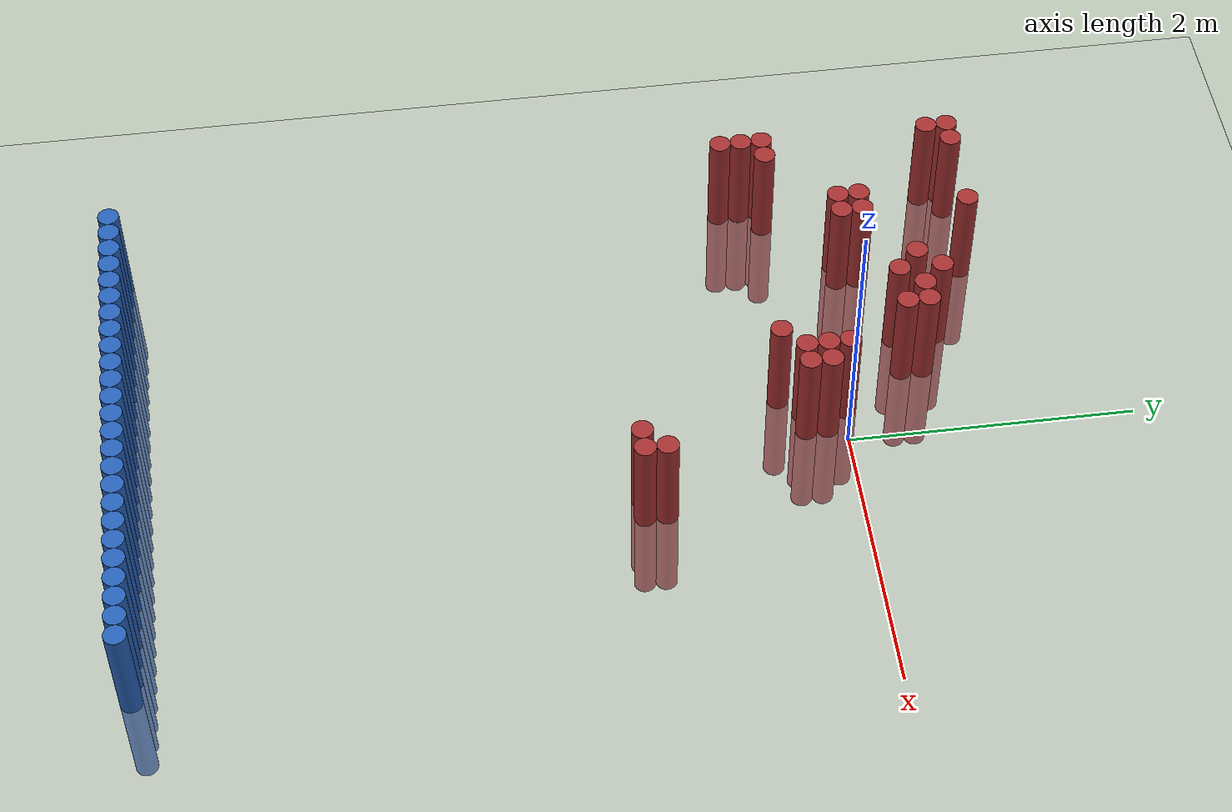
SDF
<sdf version="1.6">
 <world name="default">
  <model name="ground_plane">
   <static>1</static>
   <link name="link">
    <collision name="collision">
     <geometry><plane><normal>0 0 1</normal><size>100 100</size></plane></geometry>
     <surface><friction><ode><mu>100</mu><mu2>50</mu2></ode></friction></surface>
    </collision>
    <visual name="visual">
     <cast_shadows>0</cast_shadows>
     <geometry><plane><normal>0 0 1</normal><size>100 100</size></plane></geometry>
     <material>
      <script><uri>file://media/materials/scripts/gazebo.material</uri><name>Gazebo/Grey</name></script>
     </material>
    </visual>
   </link>
  </model>
  <model name="unit_cylinder_16">
   <static>1</static>
   <pose>1.525000 -4.925000 0.000000 0.000000 0.000000 0.000000</pose>
   <link name="link">
    <inertial>
     <mass>1</mass>
     <inertia><ixx>0.145833</ixx><ixy>0</ixy><ixz>0</ixz><iyy>0.145833</iyy><iyz>0</iyz><izz>0.125</izz></inertia>
    </inertial>
    <collision name="collision">
     <geometry><cylinder><radius>0.075000</radius><length>1.5</length></cylinder></geometry>
    </collision>
    <visual name="visual">
     <geometry><cylinder><radius>0.075000</radius><length>1.5</length></cylinder></geometry>
     <material>
      <ambient>0.152000 0.379000 0.720000 1</ambient>
      <diffuse>0.152000 0.379000 0.720000 1</diffuse>
     </material>
     <material>
      <script><name>Gazebo/Grey</name><uri>file://media/materials/scripts/gazebo.material</uri></script>
     </material>
    </visual>
   </link>
  </model>
  <model name="unit_cylinder_17">
   <static>1</static>
   <pose>1.375000 -4.925000 0.000000 0.000000 0.000000 0.000000</pose>
   <link name="link">
    <inertial>
     <mass>1</mass>
     <inertia><ixx>0.145833</ixx><ixy>0</ixy><ixz>0</ixz><iyy>0.145833</iyy><iyz>0</iyz><izz>0.125</izz></inertia>
    </inertial>
    <collision name="collision">
     <geometry><cylinder><radius>0.075000</radius><length>1.5</length></cylinder></geometry>
    </collision>
    <visual name="visual">
     <geometry><cylinder><radius>0.075000</radius><length>1.5</length></cylinder></geometry>
     <material>
      <ambient>0.152000 0.379000 0.720000 1</ambient>
      <diffuse>0.152000 0.379000 0.720000 1</diffuse>
     </material>
     <material>
      <script><name>Gazebo/Grey</name><uri>file://media/materials/scripts/gazebo.material</uri></script>
     </material>
    </visual>
   </link>
  </model>
  <model name="unit_cylinder_18">
   <static>1</static>
   <pose>1.225000 -4.925000 0.000000 0.000000 0.000000 0.000000</pose>
   <link name="link">
    <inertial>
     <mass>1</mass>
     <inertia><ixx>0.145833</ixx><ixy>0</ixy><ixz>0</ixz><iyy>0.145833</iyy><iyz>0</iyz><izz>0.125</izz></inertia>
    </inertial>
    <collision name="collision">
     <geometry><cylinder><radius>0.075000</radius><length>1.5</length></cylinder></geometry>
    </collision>
    <visual name="visual">
     <geometry><cylinder><radius>0.075000</radius><length>1.5</length></cylinder></geometry>
     <material>
      <ambient>0.152000 0.379000 0.720000 1</ambient>
      <diffuse>0.152000 0.379000 0.720000 1</diffuse>
     </material>
     <material>
      <script><name>Gazebo/Grey</name><uri>file://media/materials/scripts/gazebo.material</uri></script>
     </material>
    </visual>
   </link>
  </model>
  <model name="unit_cylinder_19">
   <static>1</static>
   <pose>1.075000 -4.925000 0.000000 0.000000 0.000000 0.000000</pose>
   <link name="link">
    <inertial>
     <mass>1</mass>
     <inertia><ixx>0.145833</ixx><ixy>0</ixy><ixz>0</ixz><iyy>0.145833</iyy><iyz>0</iyz><izz>0.125</izz></inertia>
    </inertial>
    <collision name="collision">
     <geometry><cylinder><radius>0.075000</radius><length>1.5</length></cylinder></geometry>
    </collision>
    <visual name="visual">
     <geometry><cylinder><radius>0.075000</radius><length>1.5</length></cylinder></geometry>
     <material>
      <ambient>0.152000 0.379000 0.720000 1</ambient>
      <diffuse>0.152000 0.379000 0.720000 1</diffuse>
     </material>
     <material>
      <script><name>Gazebo/Grey</name><uri>file://media/materials/scripts/gazebo.material</uri></script>
     </material>
    </visual>
   </link>
  </model>
  <model name="unit_cylinder_20">
   <static>1</static>
   <pose>0.925000 -4.925000 0.000000 0.000000 0.000000 0.000000</pose>
   <link name="link">
    <inertial>
     <mass>1</mass>
     <inertia><ixx>0.145833</ixx><ixy>0</ixy><ixz>0</ixz><iyy>0.145833</iyy><iyz>0</iyz><izz>0.125</izz></inertia>
    </inertial>
    <collision name="collision">
     <geometry><cylinder><radius>0.075000</radius><length>1.5</length></cylinder></geometry>
    </collision>
    <visual name="visual">
     <geometry><cylinder><radius>0.075000</radius><length>1.5</length></cylinder></geometry>
     <material>
      <ambient>0.152000 0.379000 0.720000 1</ambient>
      <diffuse>0.152000 0.379000 0.720000 1</diffuse>
     </material>
     <material>
      <script><name>Gazebo/Grey</name><uri>file://media/materials/scripts/gazebo.material</uri></script>
     </material>
    </visual>
   </link>
  </model>
  <model name="unit_cylinder_21">
   <static>1</static>
   <pose>0.775000 -4.925000 0.000000 0.000000 0.000000 0.000000</pose>
   <link name="link">
    <inertial>
     <mass>1</mass>
     <inertia><ixx>0.145833</ixx><ixy>0</ixy><ixz>0</ixz><iyy>0.145833</iyy><iyz>0</iyz><izz>0.125</izz></inertia>
    </inertial>
    <collision name="collision">
     <geometry><cylinder><radius>0.075000</radius><length>1.5</length></cylinder></geometry>
    </collision>
    <visual name="visual">
     <geometry><cylinder><radius>0.075000</radius><length>1.5</length></cylinder></geometry>
     <material>
      <ambient>0.152000 0.379000 0.720000 1</ambient>
      <diffuse>0.152000 0.379000 0.720000 1</diffuse>
     </material>
     <material>
      <script><name>Gazebo/Grey</name><uri>file://media/materials/scripts/gazebo.material</uri></script>
     </material>
    </visual>
   </link>
  </model>
  <model name="unit_cylinder_22">
   <static>1</static>
   <pose>0.625000 -4.925000 0.000000 0.000000 0.000000 0.000000</pose>
   <link name="link">
    <inertial>
     <mass>1</mass>
     <inertia><ixx>0.145833</ixx><ixy>0</ixy><ixz>0</ixz><iyy>0.145833</iyy><iyz>0</iyz><izz>0.125</izz></inertia>
    </inertial>
    <collision name="collision">
     <geometry><cylinder><radius>0.075000</radius><length>1.5</length></cylinder></geometry>
    </collision>
    <visual name="visual">
     <geometry><cylinder><radius>0.075000</radius><length>1.5</length></cylinder></geometry>
     <material>
      <ambient>0.152000 0.379000 0.720000 1</ambient>
      <diffuse>0.152000 0.379000 0.720000 1</diffuse>
     </material>
     <material>
      <script><name>Gazebo/Grey</name><uri>file://media/materials/scripts/gazebo.material</uri></script>
     </material>
    </visual>
   </link>
  </model>
  <model name="unit_cylinder_23">
   <static>1</static>
   <pose>0.475000 -4.925000 0.000000 0.000000 0.000000 0.000000</pose>
   <link name="link">
    <inertial>
     <mass>1</mass>
     <inertia><ixx>0.145833</ixx><ixy>0</ixy><ixz>0</ixz><iyy>0.145833</iyy><iyz>0</iyz><izz>0.125</izz></inertia>
    </inertial>
    <collision name="collision">
     <geometry><cylinder><radius>0.075000</radius><length>1.5</length></cylinder></geometry>
    </collision>
    <visual name="visual">
     <geometry><cylinder><radius>0.075000</radius><length>1.5</length></cylinder></geometry>
     <material>
      <ambient>0.152000 0.379000 0.720000 1</ambient>
      <diffuse>0.152000 0.379000 0.720000 1</diffuse>
     </material>
     <material>
      <script><name>Gazebo/Grey</name><uri>file://media/materials/scripts/gazebo.material</uri></script>
     </material>
    </visual>
   </link>
  </model>
  <model name="unit_cylinder_24">
   <static>1</static>
   <pose>0.325000 -4.925000 0.000000 0.000000 0.000000 0.000000</pose>
   <link name="link">
    <inertial>
     <mass>1</mass>
     <inertia><ixx>0.145833</ixx><ixy>0</ixy><ixz>0</ixz><iyy>0.145833</iyy><iyz>0</iyz><izz>0.125</izz></inertia>
    </inertial>
    <collision name="collision">
     <geometry><cylinder><radius>0.075000</radius><length>1.5</length></cylinder></geometry>
    </collision>
    <visual name="visual">
     <geometry><cylinder><radius>0.075000</radius><length>1.5</length></cylinder></geometry>
     <material>
      <ambient>0.152000 0.379000 0.720000 1</ambient>
      <diffuse>0.152000 0.379000 0.720000 1</diffuse>
     </material>
     <material>
      <script><name>Gazebo/Grey</name><uri>file://media/materials/scripts/gazebo.material</uri></script>
     </material>
    </visual>
   </link>
  </model>
  <model name="unit_cylinder_25">
   <static>1</static>
   <pose>0.175000 -4.925000 0.000000 0.000000 0.000000 0.000000</pose>
   <link name="link">
    <inertial>
     <mass>1</mass>
     <inertia><ixx>0.145833</ixx><ixy>0</ixy><ixz>0</ixz><iyy>0.145833</iyy><iyz>0</iyz><izz>0.125</izz></inertia>
    </inertial>
    <collision name="collision">
     <geometry><cylinder><radius>0.075000</radius><length>1.5</length></cylinder></geometry>
    </collision>
    <visual name="visual">
     <geometry><cylinder><radius>0.075000</radius><length>1.5</length></cylinder></geometry>
     <material>
      <ambient>0.152000 0.379000 0.720000 1</ambient>
      <diffuse>0.152000 0.379000 0.720000 1</diffuse>
     </material>
     <material>
      <script><name>Gazebo/Grey</name><uri>file://media/materials/scripts/gazebo.material</uri></script>
     </material>
    </visual>
   </link>
  </model>
  <model name="unit_cylinder_26">
   <static>1</static>
   <pose>0.025000 -4.925000 0.000000 0.000000 0.000000 0.000000</pose>
   <link name="link">
    <inertial>
     <mass>1</mass>
     <inertia><ixx>0.145833</ixx><ixy>0</ixy><ixz>0</ixz><iyy>0.145833</iyy><iyz>0</iyz><izz>0.125</izz></inertia>
    </inertial>
    <collision name="collision">
     <geometry><cylinder><radius>0.075000</radius><length>1.5</length></cylinder></geometry>
    </collision>
    <visual name="visual">
     <geometry><cylinder><radius>0.075000</radius><length>1.5</length></cylinder></geometry>
     <material>
      <ambient>0.152000 0.379000 0.720000 1</ambient>
      <diffuse>0.152000 0.379000 0.720000 1</diffuse>
     </material>
     <material>
      <script><name>Gazebo/Grey</name><uri>file://media/materials/scripts/gazebo.material</uri></script>
     </material>
    </visual>
   </link>
  </model>
  <model name="unit_cylinder_27">
   <static>1</static>
   <pose>-0.125000 -4.925000 0.000000 0.000000 0.000000 0.000000</pose>
   <link name="link">
    <inertial>
     <mass>1</mass>
     <inertia><ixx>0.145833</ixx><ixy>0</ixy><ixz>0</ixz><iyy>0.145833</iyy><iyz>0</iyz><izz>0.125</izz></inertia>
    </inertial>
    <collision name="collision">
     <geometry><cylinder><radius>0.075000</radius><length>1.5</length></cylinder></geometry>
    </collision>
    <visual name="visual">
     <geometry><cylinder><radius>0.075000</radius><length>1.5</length></cylinder></geometry>
     <material>
      <ambient>0.152000 0.379000 0.720000 1</ambient>
      <diffuse>0.152000 0.379000 0.720000 1</diffuse>
     </material>
     <material>
      <script><name>Gazebo/Grey</name><uri>file://media/materials/scripts/gazebo.material</uri></script>
     </material>
    </visual>
   </link>
  </model>
  <model name="unit_cylinder_28">
   <static>1</static>
   <pose>-0.275000 -4.925000 0.000000 0.000000 0.000000 0.000000</pose>
   <link name="link">
    <inertial>
     <mass>1</mass>
     <inertia><ixx>0.145833</ixx><ixy>0</ixy><ixz>0</ixz><iyy>0.145833</iyy><iyz>0</iyz><izz>0.125</izz></inertia>
    </inertial>
    <collision name="collision">
     <geometry><cylinder><radius>0.075000</radius><length>1.5</length></cylinder></geometry>
    </collision>
    <visual name="visual">
     <geometry><cylinder><radius>0.075000</radius><length>1.5</length></cylinder></geometry>
     <material>
      <ambient>0.152000 0.379000 0.720000 1</ambient>
      <diffuse>0.152000 0.379000 0.720000 1</diffuse>
     </material>
     <material>
      <script><name>Gazebo/Grey</name><uri>file://media/materials/scripts/gazebo.material</uri></script>
     </material>
    </visual>
   </link>
  </model>
  <model name="unit_cylinder_29">
   <static>1</static>
   <pose>-0.425000 -4.925000 0.000000 0.000000 0.000000 0.000000</pose>
   <link name="link">
    <inertial>
     <mass>1</mass>
     <inertia><ixx>0.145833</ixx><ixy>0</ixy><ixz>0</ixz><iyy>0.145833</iyy><iyz>0</iyz><izz>0.125</izz></inertia>
    </inertial>
    <collision name="collision">
     <geometry><cylinder><radius>0.075000</radius><length>1.5</length></cylinder></geometry>
    </collision>
    <visual name="visual">
     <geometry><cylinder><radius>0.075000</radius><length>1.5</length></cylinder></geometry>
     <material>
      <ambient>0.152000 0.379000 0.720000 1</ambient>
      <diffuse>0.152000 0.379000 0.720000 1</diffuse>
     </material>
     <material>
      <script><name>Gazebo/Grey</name><uri>file://media/materials/scripts/gazebo.material</uri></script>
     </material>
    </visual>
   </link>
  </model>
  <model name="unit_cylinder_30">
   <static>1</static>
   <pose>-0.575000 -4.925000 0.000000 0.000000 0.000000 0.000000</pose>
   <link name="link">
    <inertial>
     <mass>1</mass>
     <inertia><ixx>0.145833</ixx><ixy>0</ixy><ixz>0</ixz><iyy>0.145833</iyy><iyz>0</iyz><izz>0.125</izz></inertia>
    </inertial>
    <collision name="collision">
     <geometry><cylinder><radius>0.075000</radius><length>1.5</length></cylinder></geometry>
    </collision>
    <visual name="visual">
     <geometry><cylinder><radius>0.075000</radius><length>1.5</length></cylinder></geometry>
     <material>
      <ambient>0.152000 0.379000 0.720000 1</ambient>
      <diffuse>0.152000 0.379000 0.720000 1</diffuse>
     </material>
     <material>
      <script><name>Gazebo/Grey</name><uri>file://media/materials/scripts/gazebo.material</uri></script>
     </material>
    </visual>
   </link>
  </model>
  <model name="unit_cylinder_31">
   <static>1</static>
   <pose>-0.725000 -4.925000 0.000000 0.000000 0.000000 0.000000</pose>
   <link name="link">
    <inertial>
     <mass>1</mass>
     <inertia><ixx>0.145833</ixx><ixy>0</ixy><ixz>0</ixz><iyy>0.145833</iyy><iyz>0</iyz><izz>0.125</izz></inertia>
    </inertial>
    <collision name="collision">
     <geometry><cylinder><radius>0.075000</radius><length>1.5</length></cylinder></geometry>
    </collision>
    <visual name="visual">
     <geometry><cylinder><radius>0.075000</radius><length>1.5</length></cylinder></geometry>
     <material>
      <ambient>0.152000 0.379000 0.720000 1</ambient>
      <diffuse>0.152000 0.379000 0.720000 1</diffuse>
     </material>
     <material>
      <script><name>Gazebo/Grey</name><uri>file://media/materials/scripts/gazebo.material</uri></script>
     </material>
    </visual>
   </link>
  </model>
  <model name="unit_cylinder_32">
   <static>1</static>
   <pose>-0.875000 -4.925000 0.000000 0.000000 0.000000 0.000000</pose>
   <link name="link">
    <inertial>
     <mass>1</mass>
     <inertia><ixx>0.145833</ixx><ixy>0</ixy><ixz>0</ixz><iyy>0.145833</iyy><iyz>0</iyz><izz>0.125</izz></inertia>
    </inertial>
    <collision name="collision">
     <geometry><cylinder><radius>0.075000</radius><length>1.5</length></cylinder></geometry>
    </collision>
    <visual name="visual">
     <geometry><cylinder><radius>0.075000</radius><length>1.5</length></cylinder></geometry>
     <material>
      <ambient>0.152000 0.379000 0.720000 1</ambient>
      <diffuse>0.152000 0.379000 0.720000 1</diffuse>
     </material>
     <material>
      <script><name>Gazebo/Grey</name><uri>file://media/materials/scripts/gazebo.material</uri></script>
     </material>
    </visual>
   </link>
  </model>
  <model name="unit_cylinder_33">
   <static>1</static>
   <pose>-1.025000 -4.925000 0.000000 0.000000 0.000000 0.000000</pose>
   <link name="link">
    <inertial>
     <mass>1</mass>
     <inertia><ixx>0.145833</ixx><ixy>0</ixy><ixz>0</ixz><iyy>0.145833</iyy><iyz>0</iyz><izz>0.125</izz></inertia>
    </inertial>
    <collision name="collision">
     <geometry><cylinder><radius>0.075000</radius><length>1.5</length></cylinder></geometry>
    </collision>
    <visual name="visual">
     <geometry><cylinder><radius>0.075000</radius><length>1.5</length></cylinder></geometry>
     <material>
      <ambient>0.152000 0.379000 0.720000 1</ambient>
      <diffuse>0.152000 0.379000 0.720000 1</diffuse>
     </material>
     <material>
      <script><name>Gazebo/Grey</name><uri>file://media/materials/scripts/gazebo.material</uri></script>
     </material>
    </visual>
   </link>
  </model>
  <model name="unit_cylinder_34">
   <static>1</static>
   <pose>-1.175000 -4.925000 0.000000 0.000000 0.000000 0.000000</pose>
   <link name="link">
    <inertial>
     <mass>1</mass>
     <inertia><ixx>0.145833</ixx><ixy>0</ixy><ixz>0</ixz><iyy>0.145833</iyy><iyz>0</iyz><izz>0.125</izz></inertia>
    </inertial>
    <collision name="collision">
     <geometry><cylinder><radius>0.075000</radius><length>1.5</length></cylinder></geometry>
    </collision>
    <visual name="visual">
     <geometry><cylinder><radius>0.075000</radius><length>1.5</length></cylinder></geometry>
     <material>
      <ambient>0.152000 0.379000 0.720000 1</ambient>
      <diffuse>0.152000 0.379000 0.720000 1</diffuse>
     </material>
     <material>
      <script><name>Gazebo/Grey</name><uri>file://media/materials/scripts/gazebo.material</uri></script>
     </material>
    </visual>
   </link>
  </model>
  <model name="unit_cylinder_35">
   <static>1</static>
   <pose>-1.325000 -4.925000 0.000000 0.000000 0.000000 0.000000</pose>
   <link name="link">
    <inertial>
     <mass>1</mass>
     <inertia><ixx>0.145833</ixx><ixy>0</ixy><ixz>0</ixz><iyy>0.145833</iyy><iyz>0</iyz><izz>0.125</izz></inertia>
    </inertial>
    <collision name="collision">
     <geometry><cylinder><radius>0.075000</radius><length>1.5</length></cylinder></geometry>
    </collision>
    <visual name="visual">
     <geometry><cylinder><radius>0.075000</radius><length>1.5</length></cylinder></geometry>
     <material>
      <ambient>0.152000 0.379000 0.720000 1</ambient>
      <diffuse>0.152000 0.379000 0.720000 1</diffuse>
     </material>
     <material>
      <script><name>Gazebo/Grey</name><uri>file://media/materials/scripts/gazebo.material</uri></script>
     </material>
    </visual>
   </link>
  </model>
  <model name="unit_cylinder_36">
   <static>1</static>
   <pose>-1.475000 -4.925000 0.000000 0.000000 0.000000 0.000000</pose>
   <link name="link">
    <inertial>
     <mass>1</mass>
     <inertia><ixx>0.145833</ixx><ixy>0</ixy><ixz>0</ixz><iyy>0.145833</iyy><iyz>0</iyz><izz>0.125</izz></inertia>
    </inertial>
    <collision name="collision">
     <geometry><cylinder><radius>0.075000</radius><length>1.5</length></cylinder></geometry>
    </collision>
    <visual name="visual">
     <geometry><cylinder><radius>0.075000</radius><length>1.5</length></cylinder></geometry>
     <material>
      <ambient>0.152000 0.379000 0.720000 1</ambient>
      <diffuse>0.152000 0.379000 0.720000 1</diffuse>
     </material>
     <material>
      <script><name>Gazebo/Grey</name><uri>file://media/materials/scripts/gazebo.material</uri></script>
     </material>
    </visual>
   </link>
  </model>
  <model name="unit_cylinder_37">
   <static>1</static>
   <pose>-1.625000 -4.925000 0.000000 0.000000 0.000000 0.000000</pose>
   <link name="link">
    <inertial>
     <mass>1</mass>
     <inertia><ixx>0.145833</ixx><ixy>0</ixy><ixz>0</ixz><iyy>0.145833</iyy><iyz>0</iyz><izz>0.125</izz></inertia>
    </inertial>
    <collision name="collision">
     <geometry><cylinder><radius>0.075000</radius><length>1.5</length></cylinder></geometry>
    </collision>
    <visual name="visual">
     <geometry><cylinder><radius>0.075000</radius><length>1.5</length></cylinder></geometry>
     <material>
      <ambient>0.152000 0.379000 0.720000 1</ambient>
      <diffuse>0.152000 0.379000 0.720000 1</diffuse>
     </material>
     <material>
      <script><name>Gazebo/Grey</name><uri>file://media/materials/scripts/gazebo.material</uri></script>
     </material>
    </visual>
   </link>
  </model>
  <model name="unit_cylinder_38">
   <static>1</static>
   <pose>-1.775000 -4.925000 0.000000 0.000000 0.000000 0.000000</pose>
   <link name="link">
    <inertial>
     <mass>1</mass>
     <inertia><ixx>0.145833</ixx><ixy>0</ixy><ixz>0</ixz><iyy>0.145833</iyy><iyz>0</iyz><izz>0.125</izz></inertia>
    </inertial>
    <collision name="collision">
     <geometry><cylinder><radius>0.075000</radius><length>1.5</length></cylinder></geometry>
    </collision>
    <visual name="visual">
     <geometry><cylinder><radius>0.075000</radius><length>1.5</length></cylinder></geometry>
     <material>
      <ambient>0.152000 0.379000 0.720000 1</ambient>
      <diffuse>0.152000 0.379000 0.720000 1</diffuse>
     </material>
     <material>
      <script><name>Gazebo/Grey</name><uri>file://media/materials/scripts/gazebo.material</uri></script>
     </material>
    </visual>
   </link>
  </model>
  <model name="unit_cylinder_39">
   <static>1</static>
   <pose>-1.925000 -4.925000 0.000000 0.000000 0.000000 0.000000</pose>
   <link name="link">
    <inertial>
     <mass>1</mass>
     <inertia><ixx>0.145833</ixx><ixy>0</ixy><ixz>0</ixz><iyy>0.145833</iyy><iyz>0</iyz><izz>0.125</izz></inertia>
    </inertial>
    <collision name="collision">
     <geometry><cylinder><radius>0.075000</radius><length>1.5</length></cylinder></geometry>
    </collision>
    <visual name="visual">
     <geometry><cylinder><radius>0.075000</radius><length>1.5</length></cylinder></geometry>
     <material>
      <ambient>0.152000 0.379000 0.720000 1</ambient>
      <diffuse>0.152000 0.379000 0.720000 1</diffuse>
     </material>
     <material>
      <script><name>Gazebo/Grey</name><uri>file://media/materials/scripts/gazebo.material</uri></script>
     </material>
    </visual>
   </link>
  </model>
  <model name="unit_cylinder_40">
   <static>1</static>
   <pose>-2.075000 -4.925000 0.000000 0.000000 0.000000 0.000000</pose>
   <link name="link">
    <inertial>
     <mass>1</mass>
     <inertia><ixx>0.145833</ixx><ixy>0</ixy><ixz>0</ixz><iyy>0.145833</iyy><iyz>0</iyz><izz>0.125</izz></inertia>
    </inertial>
    <collision name="collision">
     <geometry><cylinder><radius>0.075000</radius><length>1.5</length></cylinder></geometry>
    </collision>
    <visual name="visual">
     <geometry><cylinder><radius>0.075000</radius><length>1.5</length></cylinder></geometry>
     <material>
      <ambient>0.152000 0.379000 0.720000 1</ambient>
      <diffuse>0.152000 0.379000 0.720000 1</diffuse>
     </material>
     <material>
      <script><name>Gazebo/Grey</name><uri>file://media/materials/scripts/gazebo.material</uri></script>
     </material>
    </visual>
   </link>
  </model>
  <model name="unit_cylinder_315">
   <static>1</static>
   <pose>-2.225000 -0.575000 0.000000 0.000000 0.000000 0.000000</pose>
   <link name="link">
    <inertial>
     <mass>1</mass>
     <inertia><ixx>0.145833</ixx><ixy>0</ixy><ixz>0</ixz><iyy>0.145833</iyy><iyz>0</iyz><izz>0.125</izz></inertia>
    </inertial>
    <collision name="collision">
     <geometry><cylinder><radius>0.075000</radius><length>1.5</length></cylinder></geometry>
    </collision>
    <visual name="visual">
     <geometry><cylinder><radius>0.075000</radius><length>1.5</length></cylinder></geometry>
     <material>
      <ambient>0.648000 0.192000 0.192000 1</ambient>
      <diffuse>0.648000 0.192000 0.192000 1</diffuse>
     </material>
     <material>
      <script><name>Gazebo/Grey</name><uri>file://media/materials/scripts/gazebo.material</uri></script>
     </material>
    </visual>
   </link>
  </model>
  <model name="unit_cylinder_316">
   <static>1</static>
   <pose>-2.225000 -0.425000 0.000000 0.000000 0.000000 0.000000</pose>
   <link name="link">
    <inertial>
     <mass>1</mass>
     <inertia><ixx>0.145833</ixx><ixy>0</ixy><ixz>0</ixz><iyy>0.145833</iyy><iyz>0</iyz><izz>0.125</izz></inertia>
    </inertial>
    <collision name="collision">
     <geometry><cylinder><radius>0.075000</radius><length>1.5</length></cylinder></geometry>
    </collision>
    <visual name="visual">
     <geometry><cylinder><radius>0.075000</radius><length>1.5</length></cylinder></geometry>
     <material>
      <ambient>0.648000 0.192000 0.192000 1</ambient>
      <diffuse>0.648000 0.192000 0.192000 1</diffuse>
     </material>
     <material>
      <script><name>Gazebo/Grey</name><uri>file://media/materials/scripts/gazebo.material</uri></script>
     </material>
    </visual>
   </link>
  </model>
  <model name="unit_cylinder_317">
   <static>1</static>
   <pose>-2.225000 -0.275000 0.000000 0.000000 0.000000 0.000000</pose>
   <link name="link">
    <inertial>
     <mass>1</mass>
     <inertia><ixx>0.145833</ixx><ixy>0</ixy><ixz>0</ixz><iyy>0.145833</iyy><iyz>0</iyz><izz>0.125</izz></inertia>
    </inertial>
    <collision name="collision">
     <geometry><cylinder><radius>0.075000</radius><length>1.5</length></cylinder></geometry>
    </collision>
    <visual name="visual">
     <geometry><cylinder><radius>0.075000</radius><length>1.5</length></cylinder></geometry>
     <material>
      <ambient>0.648000 0.192000 0.192000 1</ambient>
      <diffuse>0.648000 0.192000 0.192000 1</diffuse>
     </material>
     <material>
      <script><name>Gazebo/Grey</name><uri>file://media/materials/scripts/gazebo.material</uri></script>
     </material>
    </visual>
   </link>
  </model>
  <model name="unit_cylinder_318">
   <static>1</static>
   <pose>-2.225000 0.925000 0.000000 0.000000 0.000000 0.000000</pose>
   <link name="link">
    <inertial>
     <mass>1</mass>
     <inertia><ixx>0.145833</ixx><ixy>0</ixy><ixz>0</ixz><iyy>0.145833</iyy><iyz>0</iyz><izz>0.125</izz></inertia>
    </inertial>
    <collision name="collision">
     <geometry><cylinder><radius>0.075000</radius><length>1.5</length></cylinder></geometry>
    </collision>
    <visual name="visual">
     <geometry><cylinder><radius>0.075000</radius><length>1.5</length></cylinder></geometry>
     <material>
      <ambient>0.648000 0.192000 0.192000 1</ambient>
      <diffuse>0.648000 0.192000 0.192000 1</diffuse>
     </material>
     <material>
      <script><name>Gazebo/Grey</name><uri>file://media/materials/scripts/gazebo.material</uri></script>
     </material>
    </visual>
   </link>
  </model>
  <model name="unit_cylinder_319">
   <static>1</static>
   <pose>-2.225000 1.075000 0.000000 0.000000 0.000000 0.000000</pose>
   <link name="link">
    <inertial>
     <mass>1</mass>
     <inertia><ixx>0.145833</ixx><ixy>0</ixy><ixz>0</ixz><iyy>0.145833</iyy><iyz>0</iyz><izz>0.125</izz></inertia>
    </inertial>
    <collision name="collision">
     <geometry><cylinder><radius>0.075000</radius><length>1.5</length></cylinder></geometry>
    </collision>
    <visual name="visual">
     <geometry><cylinder><radius>0.075000</radius><length>1.5</length></cylinder></geometry>
     <material>
      <ambient>0.648000 0.192000 0.192000 1</ambient>
      <diffuse>0.648000 0.192000 0.192000 1</diffuse>
     </material>
     <material>
      <script><name>Gazebo/Grey</name><uri>file://media/materials/scripts/gazebo.material</uri></script>
     </material>
    </visual>
   </link>
  </model>
  <model name="unit_cylinder_321">
   <static>1</static>
   <pose>-2.075000 -0.275000 0.000000 0.000000 0.000000 0.000000</pose>
   <link name="link">
    <inertial>
     <mass>1</mass>
     <inertia><ixx>0.145833</ixx><ixy>0</ixy><ixz>0</ixz><iyy>0.145833</iyy><iyz>0</iyz><izz>0.125</izz></inertia>
    </inertial>
    <collision name="collision">
     <geometry><cylinder><radius>0.075000</radius><length>1.5</length></cylinder></geometry>
    </collision>
    <visual name="visual">
     <geometry><cylinder><radius>0.075000</radius><length>1.5</length></cylinder></geometry>
     <material>
      <ambient>0.648000 0.192000 0.192000 1</ambient>
      <diffuse>0.648000 0.192000 0.192000 1</diffuse>
     </material>
     <material>
      <script><name>Gazebo/Grey</name><uri>file://media/materials/scripts/gazebo.material</uri></script>
     </material>
    </visual>
   </link>
  </model>
  <model name="unit_cylinder_322">
   <static>1</static>
   <pose>-2.075000 1.075000 0.000000 0.000000 0.000000 0.000000</pose>
   <link name="link">
    <inertial>
     <mass>1</mass>
     <inertia><ixx>0.145833</ixx><ixy>0</ixy><ixz>0</ixz><iyy>0.145833</iyy><iyz>0</iyz><izz>0.125</izz></inertia>
    </inertial>
    <collision name="collision">
     <geometry><cylinder><radius>0.075000</radius><length>1.5</length></cylinder></geometry>
    </collision>
    <visual name="visual">
     <geometry><cylinder><radius>0.075000</radius><length>1.5</length></cylinder></geometry>
     <material>
      <ambient>0.648000 0.192000 0.192000 1</ambient>
      <diffuse>0.648000 0.192000 0.192000 1</diffuse>
     </material>
     <material>
      <script><name>Gazebo/Grey</name><uri>file://media/materials/scripts/gazebo.material</uri></script>
     </material>
    </visual>
   </link>
  </model>
  <model name="unit_cylinder_334">
   <static>1</static>
   <pose>-1.625000 0.175000 0.000000 0.000000 0.000000 0.000000</pose>
   <link name="link">
    <inertial>
     <mass>1</mass>
     <inertia><ixx>0.145833</ixx><ixy>0</ixy><ixz>0</ixz><iyy>0.145833</iyy><iyz>0</iyz><izz>0.125</izz></inertia>
    </inertial>
    <collision name="collision">
     <geometry><cylinder><radius>0.075000</radius><length>1.5</length></cylinder></geometry>
    </collision>
    <visual name="visual">
     <geometry><cylinder><radius>0.075000</radius><length>1.5</length></cylinder></geometry>
     <material>
      <ambient>0.648000 0.192000 0.192000 1</ambient>
      <diffuse>0.648000 0.192000 0.192000 1</diffuse>
     </material>
     <material>
      <script><name>Gazebo/Grey</name><uri>file://media/materials/scripts/gazebo.material</uri></script>
     </material>
    </visual>
   </link>
  </model>
  <model name="unit_cylinder_335">
   <static>1</static>
   <pose>-1.625000 0.325000 0.000000 0.000000 0.000000 0.000000</pose>
   <link name="link">
    <inertial>
     <mass>1</mass>
     <inertia><ixx>0.145833</ixx><ixy>0</ixy><ixz>0</ixz><iyy>0.145833</iyy><iyz>0</iyz><izz>0.125</izz></inertia>
    </inertial>
    <collision name="collision">
     <geometry><cylinder><radius>0.075000</radius><length>1.5</length></cylinder></geometry>
    </collision>
    <visual name="visual">
     <geometry><cylinder><radius>0.075000</radius><length>1.5</length></cylinder></geometry>
     <material>
      <ambient>0.648000 0.192000 0.192000 1</ambient>
      <diffuse>0.648000 0.192000 0.192000 1</diffuse>
     </material>
     <material>
      <script><name>Gazebo/Grey</name><uri>file://media/materials/scripts/gazebo.material</uri></script>
     </material>
    </visual>
   </link>
  </model>
  <model name="unit_cylinder_337">
   <static>1</static>
   <pose>-1.475000 0.175000 0.000000 0.000000 0.000000 0.000000</pose>
   <link name="link">
    <inertial>
     <mass>1</mass>
     <inertia><ixx>0.145833</ixx><ixy>0</ixy><ixz>0</ixz><iyy>0.145833</iyy><iyz>0</iyz><izz>0.125</izz></inertia>
    </inertial>
    <collision name="collision">
     <geometry><cylinder><radius>0.075000</radius><length>1.5</length></cylinder></geometry>
    </collision>
    <visual name="visual">
     <geometry><cylinder><radius>0.075000</radius><length>1.5</length></cylinder></geometry>
     <material>
      <ambient>0.648000 0.192000 0.192000 1</ambient>
      <diffuse>0.648000 0.192000 0.192000 1</diffuse>
     </material>
     <material>
      <script><name>Gazebo/Grey</name><uri>file://media/materials/scripts/gazebo.material</uri></script>
     </material>
    </visual>
   </link>
  </model>
  <model name="unit_cylinder_338">
   <static>1</static>
   <pose>-1.475000 0.325000 0.000000 0.000000 0.000000 0.000000</pose>
   <link name="link">
    <inertial>
     <mass>1</mass>
     <inertia><ixx>0.145833</ixx><ixy>0</ixy><ixz>0</ixz><iyy>0.145833</iyy><iyz>0</iyz><izz>0.125</izz></inertia>
    </inertial>
    <collision name="collision">
     <geometry><cylinder><radius>0.075000</radius><length>1.5</length></cylinder></geometry>
    </collision>
    <visual name="visual">
     <geometry><cylinder><radius>0.075000</radius><length>1.5</length></cylinder></geometry>
     <material>
      <ambient>0.648000 0.192000 0.192000 1</ambient>
      <diffuse>0.648000 0.192000 0.192000 1</diffuse>
     </material>
     <material>
      <script><name>Gazebo/Grey</name><uri>file://media/materials/scripts/gazebo.material</uri></script>
     </material>
    </visual>
   </link>
  </model>
  <model name="unit_cylinder_339">
   <static>1</static>
   <pose>-1.475000 1.075000 0.000000 0.000000 0.000000 0.000000</pose>
   <link name="link">
    <inertial>
     <mass>1</mass>
     <inertia><ixx>0.145833</ixx><ixy>0</ixy><ixz>0</ixz><iyy>0.145833</iyy><iyz>0</iyz><izz>0.125</izz></inertia>
    </inertial>
    <collision name="collision">
     <geometry><cylinder><radius>0.075000</radius><length>1.5</length></cylinder></geometry>
    </collision>
    <visual name="visual">
     <geometry><cylinder><radius>0.075000</radius><length>1.5</length></cylinder></geometry>
     <material>
      <ambient>0.648000 0.192000 0.192000 1</ambient>
      <diffuse>0.648000 0.192000 0.192000 1</diffuse>
     </material>
     <material>
      <script><name>Gazebo/Grey</name><uri>file://media/materials/scripts/gazebo.material</uri></script>
     </material>
    </visual>
   </link>
  </model>
  <model name="unit_cylinder_352">
   <static>1</static>
   <pose>-1.025000 0.625000 0.000000 0.000000 0.000000 0.000000</pose>
   <link name="link">
    <inertial>
     <mass>1</mass>
     <inertia><ixx>0.145833</ixx><ixy>0</ixy><ixz>0</ixz><iyy>0.145833</iyy><iyz>0</iyz><izz>0.125</izz></inertia>
    </inertial>
    <collision name="collision">
     <geometry><cylinder><radius>0.075000</radius><length>1.5</length></cylinder></geometry>
    </collision>
    <visual name="visual">
     <geometry><cylinder><radius>0.075000</radius><length>1.5</length></cylinder></geometry>
     <material>
      <ambient>0.648000 0.192000 0.192000 1</ambient>
      <diffuse>0.648000 0.192000 0.192000 1</diffuse>
     </material>
     <material>
      <script><name>Gazebo/Grey</name><uri>file://media/materials/scripts/gazebo.material</uri></script>
     </material>
    </visual>
   </link>
  </model>
  <model name="unit_cylinder_355">
   <static>1</static>
   <pose>-0.875000 0.475000 0.000000 0.000000 0.000000 0.000000</pose>
   <link name="link">
    <inertial>
     <mass>1</mass>
     <inertia><ixx>0.145833</ixx><ixy>0</ixy><ixz>0</ixz><iyy>0.145833</iyy><iyz>0</iyz><izz>0.125</izz></inertia>
    </inertial>
    <collision name="collision">
     <geometry><cylinder><radius>0.075000</radius><length>1.5</length></cylinder></geometry>
    </collision>
    <visual name="visual">
     <geometry><cylinder><radius>0.075000</radius><length>1.5</length></cylinder></geometry>
     <material>
      <ambient>0.648000 0.192000 0.192000 1</ambient>
      <diffuse>0.648000 0.192000 0.192000 1</diffuse>
     </material>
     <material>
      <script><name>Gazebo/Grey</name><uri>file://media/materials/scripts/gazebo.material</uri></script>
     </material>
    </visual>
   </link>
  </model>
  <model name="unit_cylinder_356">
   <static>1</static>
   <pose>-0.875000 0.775000 0.000000 0.000000 0.000000 0.000000</pose>
   <link name="link">
    <inertial>
     <mass>1</mass>
     <inertia><ixx>0.145833</ixx><ixy>0</ixy><ixz>0</ixz><iyy>0.145833</iyy><iyz>0</iyz><izz>0.125</izz></inertia>
    </inertial>
    <collision name="collision">
     <geometry><cylinder><radius>0.075000</radius><length>1.5</length></cylinder></geometry>
    </collision>
    <visual name="visual">
     <geometry><cylinder><radius>0.075000</radius><length>1.5</length></cylinder></geometry>
     <material>
      <ambient>0.648000 0.192000 0.192000 1</ambient>
      <diffuse>0.648000 0.192000 0.192000 1</diffuse>
     </material>
     <material>
      <script><name>Gazebo/Grey</name><uri>file://media/materials/scripts/gazebo.material</uri></script>
     </material>
    </visual>
   </link>
  </model>
  <model name="unit_cylinder_361">
   <static>1</static>
   <pose>-0.725000 0.625000 0.000000 0.000000 0.000000 0.000000</pose>
   <link name="link">
    <inertial>
     <mass>1</mass>
     <inertia><ixx>0.145833</ixx><ixy>0</ixy><ixz>0</ixz><iyy>0.145833</iyy><iyz>0</iyz><izz>0.125</izz></inertia>
    </inertial>
    <collision name="collision">
     <geometry><cylinder><radius>0.075000</radius><length>1.5</length></cylinder></geometry>
    </collision>
    <visual name="visual">
     <geometry><cylinder><radius>0.075000</radius><length>1.5</length></cylinder></geometry>
     <material>
      <ambient>0.648000 0.192000 0.192000 1</ambient>
      <diffuse>0.648000 0.192000 0.192000 1</diffuse>
     </material>
     <material>
      <script><name>Gazebo/Grey</name><uri>file://media/materials/scripts/gazebo.material</uri></script>
     </material>
    </visual>
   </link>
  </model>
  <model name="unit_cylinder_363">
   <static>1</static>
   <pose>-0.575000 0.475000 0.000000 0.000000 0.000000 0.000000</pose>
   <link name="link">
    <inertial>
     <mass>1</mass>
     <inertia><ixx>0.145833</ixx><ixy>0</ixy><ixz>0</ixz><iyy>0.145833</iyy><iyz>0</iyz><izz>0.125</izz></inertia>
    </inertial>
    <collision name="collision">
     <geometry><cylinder><radius>0.075000</radius><length>1.5</length></cylinder></geometry>
    </collision>
    <visual name="visual">
     <geometry><cylinder><radius>0.075000</radius><length>1.5</length></cylinder></geometry>
     <material>
      <ambient>0.648000 0.192000 0.192000 1</ambient>
      <diffuse>0.648000 0.192000 0.192000 1</diffuse>
     </material>
     <material>
      <script><name>Gazebo/Grey</name><uri>file://media/materials/scripts/gazebo.material</uri></script>
     </material>
    </visual>
   </link>
  </model>
  <model name="unit_cylinder_364">
   <static>1</static>
   <pose>-0.575000 0.625000 0.000000 0.000000 0.000000 0.000000</pose>
   <link name="link">
    <inertial>
     <mass>1</mass>
     <inertia><ixx>0.145833</ixx><ixy>0</ixy><ixz>0</ixz><iyy>0.145833</iyy><iyz>0</iyz><izz>0.125</izz></inertia>
    </inertial>
    <collision name="collision">
     <geometry><cylinder><radius>0.075000</radius><length>1.5</length></cylinder></geometry>
    </collision>
    <visual name="visual">
     <geometry><cylinder><radius>0.075000</radius><length>1.5</length></cylinder></geometry>
     <material>
      <ambient>0.648000 0.192000 0.192000 1</ambient>
      <diffuse>0.648000 0.192000 0.192000 1</diffuse>
     </material>
     <material>
      <script><name>Gazebo/Grey</name><uri>file://media/materials/scripts/gazebo.material</uri></script>
     </material>
    </visual>
   </link>
  </model>
  <model name="unit_cylinder_365">
   <static>1</static>
   <pose>-0.425000 -0.425000 0.000000 0.000000 0.000000 0.000000</pose>
   <link name="link">
    <inertial>
     <mass>1</mass>
     <inertia><ixx>0.145833</ixx><ixy>0</ixy><ixz>0</ixz><iyy>0.145833</iyy><iyz>0</iyz><izz>0.125</izz></inertia>
    </inertial>
    <collision name="collision">
     <geometry><cylinder><radius>0.075000</radius><length>1.5</length></cylinder></geometry>
    </collision>
    <visual name="visual">
     <geometry><cylinder><radius>0.075000</radius><length>1.5</length></cylinder></geometry>
     <material>
      <ambient>0.648000 0.192000 0.192000 1</ambient>
      <diffuse>0.648000 0.192000 0.192000 1</diffuse>
     </material>
     <material>
      <script><name>Gazebo/Grey</name><uri>file://media/materials/scripts/gazebo.material</uri></script>
     </material>
    </visual>
   </link>
  </model>
  <model name="unit_cylinder_366">
   <static>1</static>
   <pose>-0.275000 -0.275000 0.000000 0.000000 0.000000 0.000000</pose>
   <link name="link">
    <inertial>
     <mass>1</mass>
     <inertia><ixx>0.145833</ixx><ixy>0</ixy><ixz>0</ixz><iyy>0.145833</iyy><iyz>0</iyz><izz>0.125</izz></inertia>
    </inertial>
    <collision name="collision">
     <geometry><cylinder><radius>0.075000</radius><length>1.5</length></cylinder></geometry>
    </collision>
    <visual name="visual">
     <geometry><cylinder><radius>0.075000</radius><length>1.5</length></cylinder></geometry>
     <material>
      <ambient>0.648000 0.192000 0.192000 1</ambient>
      <diffuse>0.648000 0.192000 0.192000 1</diffuse>
     </material>
     <material>
      <script><name>Gazebo/Grey</name><uri>file://media/materials/scripts/gazebo.material</uri></script>
     </material>
    </visual>
   </link>
  </model>
  <model name="unit_cylinder_367">
   <static>1</static>
   <pose>-0.275000 -0.125000 0.000000 0.000000 0.000000 0.000000</pose>
   <link name="link">
    <inertial>
     <mass>1</mass>
     <inertia><ixx>0.145833</ixx><ixy>0</ixy><ixz>0</ixz><iyy>0.145833</iyy><iyz>0</iyz><izz>0.125</izz></inertia>
    </inertial>
    <collision name="collision">
     <geometry><cylinder><radius>0.075000</radius><length>1.5</length></cylinder></geometry>
    </collision>
    <visual name="visual">
     <geometry><cylinder><radius>0.075000</radius><length>1.5</length></cylinder></geometry>
     <material>
      <ambient>0.648000 0.192000 0.192000 1</ambient>
      <diffuse>0.648000 0.192000 0.192000 1</diffuse>
     </material>
     <material>
      <script><name>Gazebo/Grey</name><uri>file://media/materials/scripts/gazebo.material</uri></script>
     </material>
    </visual>
   </link>
  </model>
  <model name="unit_cylinder_368">
   <static>1</static>
   <pose>-0.275000 0.025000 0.000000 0.000000 0.000000 0.000000</pose>
   <link name="link">
    <inertial>
     <mass>1</mass>
     <inertia><ixx>0.145833</ixx><ixy>0</ixy><ixz>0</ixz><iyy>0.145833</iyy><iyz>0</iyz><izz>0.125</izz></inertia>
    </inertial>
    <collision name="collision">
     <geometry><cylinder><radius>0.075000</radius><length>1.5</length></cylinder></geometry>
    </collision>
    <visual name="visual">
     <geometry><cylinder><radius>0.075000</radius><length>1.5</length></cylinder></geometry>
     <material>
      <ambient>0.648000 0.192000 0.192000 1</ambient>
      <diffuse>0.648000 0.192000 0.192000 1</diffuse>
     </material>
     <material>
      <script><name>Gazebo/Grey</name><uri>file://media/materials/scripts/gazebo.material</uri></script>
     </material>
    </visual>
   </link>
  </model>
  <model name="unit_cylinder_369">
   <static>1</static>
   <pose>-0.125000 -0.275000 0.000000 0.000000 0.000000 0.000000</pose>
   <link name="link">
    <inertial>
     <mass>1</mass>
     <inertia><ixx>0.145833</ixx><ixy>0</ixy><ixz>0</ixz><iyy>0.145833</iyy><iyz>0</iyz><izz>0.125</izz></inertia>
    </inertial>
    <collision name="collision">
     <geometry><cylinder><radius>0.075000</radius><length>1.5</length></cylinder></geometry>
    </collision>
    <visual name="visual">
     <geometry><cylinder><radius>0.075000</radius><length>1.5</length></cylinder></geometry>
     <material>
      <ambient>0.648000 0.192000 0.192000 1</ambient>
      <diffuse>0.648000 0.192000 0.192000 1</diffuse>
     </material>
     <material>
      <script><name>Gazebo/Grey</name><uri>file://media/materials/scripts/gazebo.material</uri></script>
     </material>
    </visual>
   </link>
  </model>
  <model name="unit_cylinder_370">
   <static>1</static>
   <pose>-0.125000 -0.125000 0.000000 0.000000 0.000000 0.000000</pose>
   <link name="link">
    <inertial>
     <mass>1</mass>
     <inertia><ixx>0.145833</ixx><ixy>0</ixy><ixz>0</ixz><iyy>0.145833</iyy><iyz>0</iyz><izz>0.125</izz></inertia>
    </inertial>
    <collision name="collision">
     <geometry><cylinder><radius>0.075000</radius><length>1.5</length></cylinder></geometry>
    </collision>
    <visual name="visual">
     <geometry><cylinder><radius>0.075000</radius><length>1.5</length></cylinder></geometry>
     <material>
      <ambient>0.648000 0.192000 0.192000 1</ambient>
      <diffuse>0.648000 0.192000 0.192000 1</diffuse>
     </material>
     <material>
      <script><name>Gazebo/Grey</name><uri>file://media/materials/scripts/gazebo.material</uri></script>
     </material>
    </visual>
   </link>
  </model>
  <model name="unit_cylinder_376">
   <static>1</static>
   <pose>0.325000 -1.475000 0.000000 0.000000 0.000000 0.000000</pose>
   <link name="link">
    <inertial>
     <mass>1</mass>
     <inertia><ixx>0.145833</ixx><ixy>0</ixy><ixz>0</ixz><iyy>0.145833</iyy><iyz>0</iyz><izz>0.125</izz></inertia>
    </inertial>
    <collision name="collision">
     <geometry><cylinder><radius>0.075000</radius><length>1.5</length></cylinder></geometry>
    </collision>
    <visual name="visual">
     <geometry><cylinder><radius>0.075000</radius><length>1.5</length></cylinder></geometry>
     <material>
      <ambient>0.648000 0.192000 0.192000 1</ambient>
      <diffuse>0.648000 0.192000 0.192000 1</diffuse>
     </material>
     <material>
      <script><name>Gazebo/Grey</name><uri>file://media/materials/scripts/gazebo.material</uri></script>
     </material>
    </visual>
   </link>
  </model>
  <model name="unit_cylinder_377">
   <static>1</static>
   <pose>0.475000 -1.475000 0.000000 0.000000 0.000000 0.000000</pose>
   <link name="link">
    <inertial>
     <mass>1</mass>
     <inertia><ixx>0.145833</ixx><ixy>0</ixy><ixz>0</ixz><iyy>0.145833</iyy><iyz>0</iyz><izz>0.125</izz></inertia>
    </inertial>
    <collision name="collision">
     <geometry><cylinder><radius>0.075000</radius><length>1.5</length></cylinder></geometry>
    </collision>
    <visual name="visual">
     <geometry><cylinder><radius>0.075000</radius><length>1.5</length></cylinder></geometry>
     <material>
      <ambient>0.648000 0.192000 0.192000 1</ambient>
      <diffuse>0.648000 0.192000 0.192000 1</diffuse>
     </material>
     <material>
      <script><name>Gazebo/Grey</name><uri>file://media/materials/scripts/gazebo.material</uri></script>
     </material>
    </visual>
   </link>
  </model>
  <model name="unit_cylinder_378">
   <static>1</static>
   <pose>0.475000 -1.325000 0.000000 0.000000 0.000000 0.000000</pose>
   <link name="link">
    <inertial>
     <mass>1</mass>
     <inertia><ixx>0.145833</ixx><ixy>0</ixy><ixz>0</ixz><iyy>0.145833</iyy><iyz>0</iyz><izz>0.125</izz></inertia>
    </inertial>
    <collision name="collision">
     <geometry><cylinder><radius>0.075000</radius><length>1.5</length></cylinder></geometry>
    </collision>
    <visual name="visual">
     <geometry><cylinder><radius>0.075000</radius><length>1.5</length></cylinder></geometry>
     <material>
      <ambient>0.648000 0.192000 0.192000 1</ambient>
      <diffuse>0.648000 0.192000 0.192000 1</diffuse>
     </material>
     <material>
      <script><name>Gazebo/Grey</name><uri>file://media/materials/scripts/gazebo.material</uri></script>
     </material>
    </visual>
   </link>
  </model>
 </world>
</sdf>
